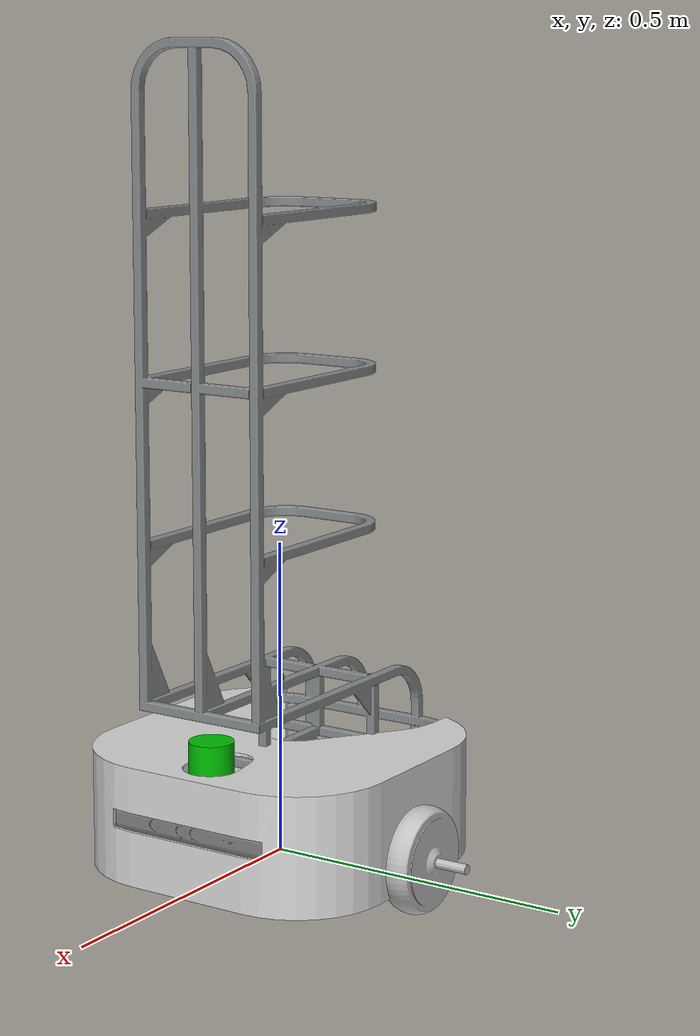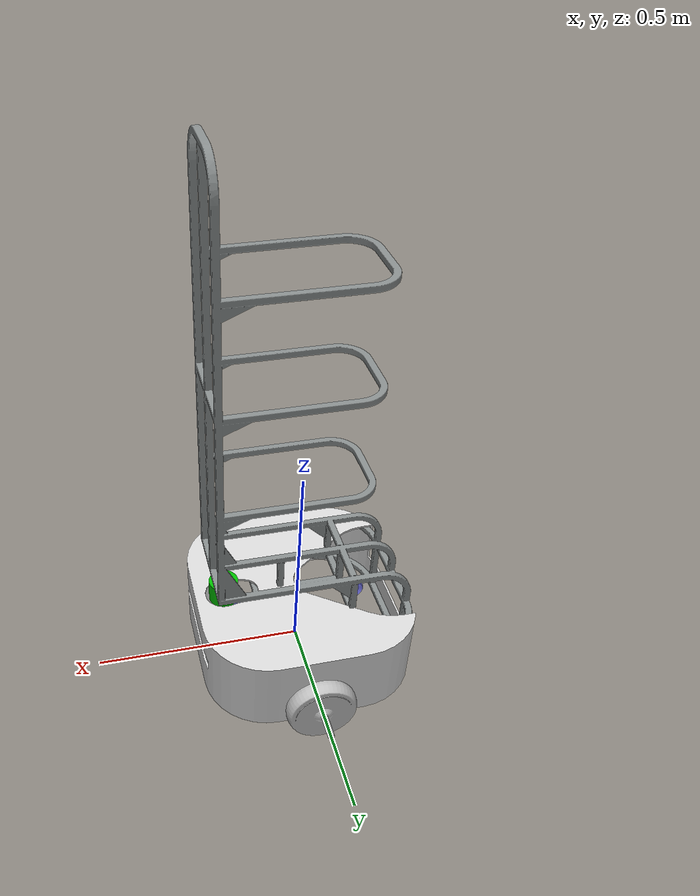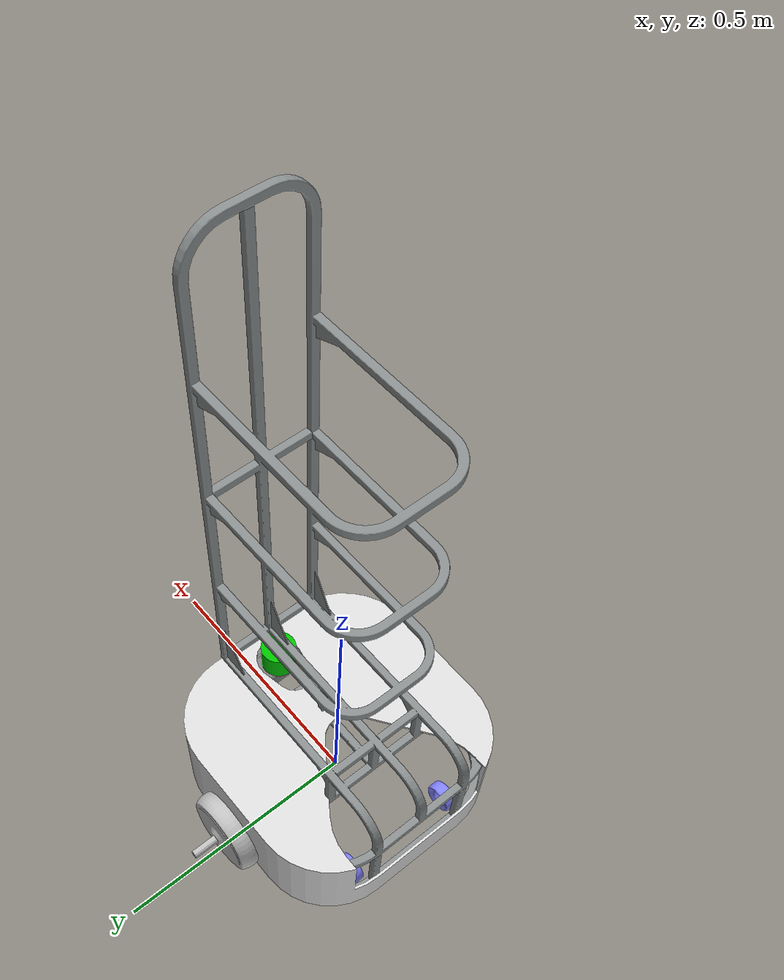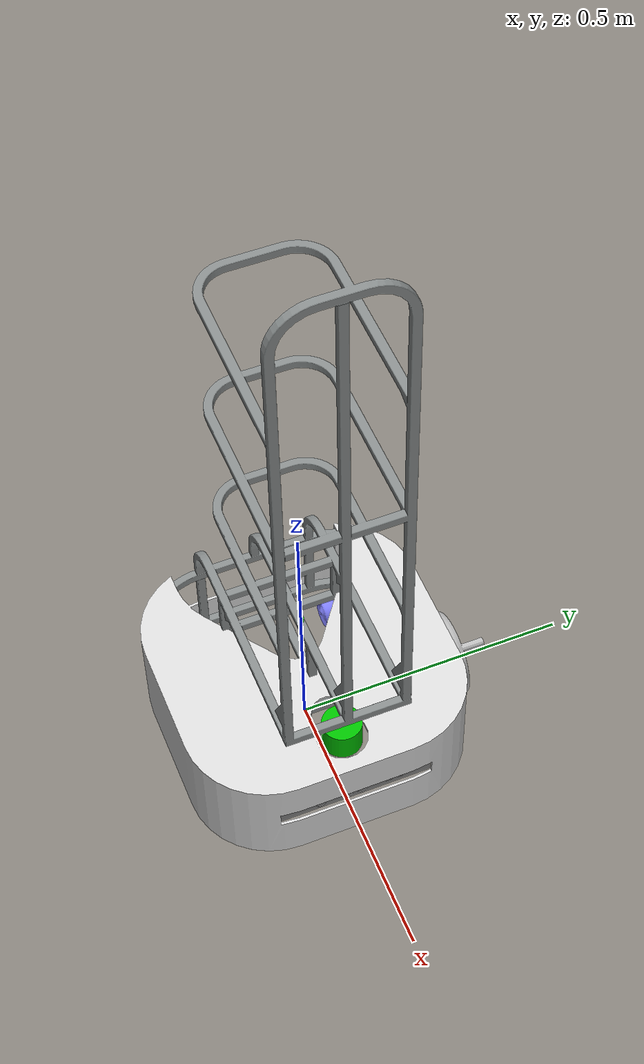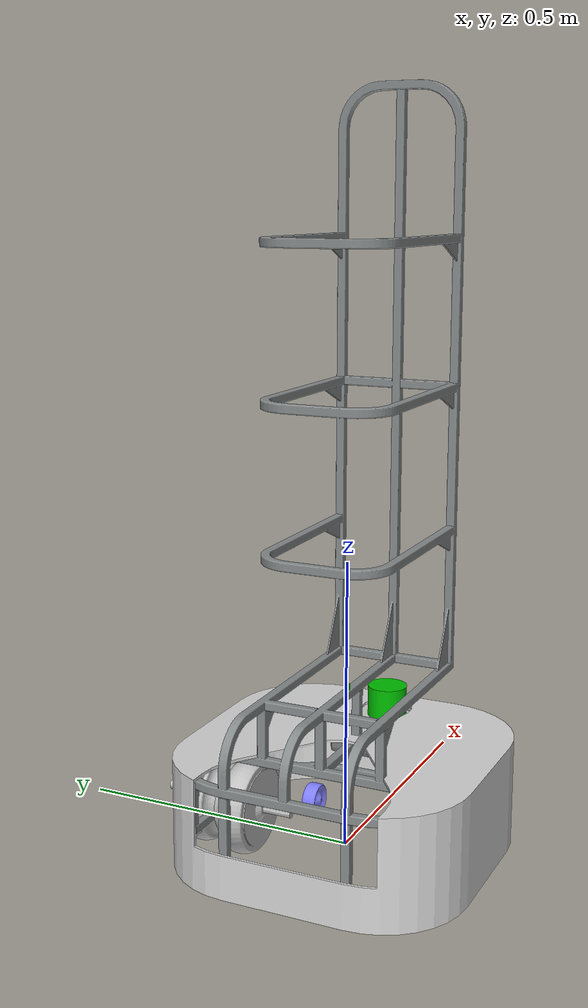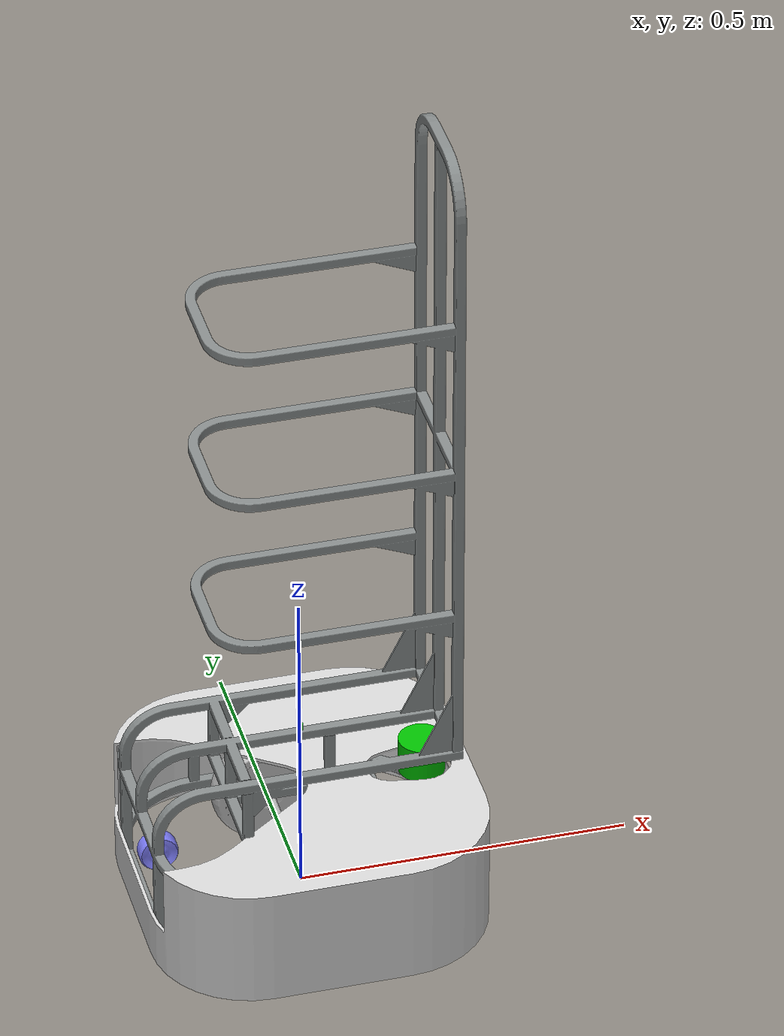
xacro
<?xml version="1.0" ?>
<robot name="waiteronix" xmlns:xacro="http://www.ros.org/wiki/xacro">

  <xacro:include filename="$(find waiteronix)/urdf/waiteronix.gazebo"/>
  <xacro:include filename="$(find waiteronix)/urdf/caster_wheels.xacro"/>
  <xacro:include filename="$(find waiteronix)/urdf/diff_wheels.xacro"/>
  <xacro:include filename="$(find waiteronix)/urdf/sensors.xacro"/>

  <link name="robot_footprint">
  </link>

  <link
    name="base_link">
    <inertial>
      <origin
        xyz="0.047332 6.6722E-08 0.43205"
        rpy="0 0 0" />
      <mass
        value="7.2595" />
      <inertia
        ixx="0.2352"
        ixy="-3.3315E-09"
        ixz="-0.0013775"
        iyy="0.23491"
        iyz="1.1095E-10"
        izz="0.18376" />
    </inertial>
    <visual>
      <origin
        xyz="0 0 0"
        rpy="0 0 0" />
      <geometry>
        <mesh
          filename="package://waiteronix/meshes/base_link.STL" />
      </geometry>
      <material
        name="">
        <color
          rgba="0.52941 0.54902 0.54902 1" />
      </material>
    </visual>
    <collision>
      <origin
        xyz="0 0 0"
        rpy="0 0 0" />
      <geometry>
        <mesh
          filename="package://waiteronix/meshes/base_link.STL" />
      </geometry>
    </collision>
  </link>

  <joint name="dummy_joint" type="fixed">
    <parent link="robot_footprint"/>
    <child link="base_link"/>
   </joint>

  <link
    name="Body">
    <inertial>
      <origin
        xyz="0.030377 8.5895E-16 0.11943"
        rpy="0 0 0" />
      <mass
        value="5.7583" />
      <inertia
        ixx="0.23029"
        ixy="-3.4648E-17"
        ixz="-0.0068726"
        iyy="0.17581"
        iyz="-2.2779E-17"
        izz="0.35786" />
    </inertial>
    <visual>
      <origin
        xyz="0 0 0"
        rpy="0 0 0" />
      <geometry>
        <mesh
          filename="package://waiteronix/meshes/Body.STL" />
      </geometry>
      <material
        name="">
        <color
          rgba="0.84706 0.84706 0.84706 1" />
      </material>
    </visual>
    <collision>
      <origin
        xyz="0 0 0"
        rpy="0 0 0" />
      <geometry>
        <mesh
          filename="package://waiteronix/meshes/Body.STL" />
      </geometry>
    </collision>
  </link>
  <joint
    name="Body_Joint"
    type="fixed">
    <origin
      xyz="0 0 0"
      rpy="0 0 0" />
    <parent
      link="base_link" />
    <child
      link="Body" />
    <axis
      xyz="0 0 0" />
  </joint>

</robot>

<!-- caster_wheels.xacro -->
<robot xmlns:xacro="http://www.ros.org/wiki/xacro">

  <link
    name="F_W_Front_Left">
    <inertial>
      <origin
        xyz="0.13868 0.123 0.005"
        rpy="0 0 0" />
      <mass
        value="0.059636" />
      <inertia
        ixx="1.6012E-05"
        ixy="-1.927E-20"
        ixz="-9.0002E-22"
        iyy="2.7287E-05"
        iyz="-2.1253E-20"
        izz="1.6012E-05" />
    </inertial>
    <visual>
      <origin
        xyz="0 0 0"
        rpy="0 0 0" />
      <geometry>
        <mesh
          filename="package://waiteronix/meshes/F_W_Front_Left.STL" />
      </geometry>
      <material
        name="">
        <color
          rgba="0.50196 0.50196 1 1" />
      </material>
    </visual>
    <collision>
      <origin
        xyz="0 0 0"
        rpy="0 0 0" />
      <geometry>
        <mesh
          filename="package://waiteronix/meshes/F_W_Front_Left.STL" />
      </geometry>
    </collision>
  </link>
  <joint
    name="F_W_Front_Left_Joint"
    type="fixed">
    <origin
      xyz="0 0 0"
      rpy="0 0 0" />
    <parent
      link="base_link" />
    <child
      link="F_W_Front_Left" />
    <axis
      xyz="0 1 0" />
  </joint>
  <link
    name="F_W_Front_Right">
    <inertial>
      <origin
        xyz="0.13868 -0.123 .005"
        rpy="0 0 0" />
      <mass
        value="0.059636" />
      <inertia
        ixx="1.6012E-05"
        ixy="5.4827E-21"
        ixz="-3.2336E-22"
        iyy="2.7287E-05"
        iyz="-3.8765E-20"
        izz="1.6012E-05" />
    </inertial>
    <visual>
      <origin
        xyz="0 0 0"
        rpy="0 0 0" />
      <geometry>
        <mesh
          filename="package://waiteronix/meshes/F_W_Front_Right.STL" />
      </geometry>
      <material
        name="">
        <color
          rgba="0.50196 0.50196 1 1" />
      </material>
    </visual>
    <collision>
      <origin
        xyz="0 0 0"
        rpy="0 0 0" />
      <geometry>
        <mesh
          filename="package://waiteronix/meshes/F_W_Front_Right.STL" />
      </geometry>
    </collision>
  </link>
  <joint
    name="F_W_Front_Right_Joint"
    type="fixed">
    <origin
      xyz="0 0 0"
      rpy="0 0 0" />
    <parent
      link="base_link" />
    <child
      link="F_W_Front_Right" />
    <axis
      xyz="0 1 0" />
  </joint>
  <link
    name="F_W_Back_Left">
    <inertial>
      <origin
        xyz="-0.19 0.1215 .005"
        rpy="0 0 0" />
      <mass
        value="0.059636" />
      <inertia
        ixx="1.6012E-05"
        ixy="2.3169E-21"
        ixz="-1.6362E-21"
        iyy="2.7287E-05"
        iyz="-4.46E-21"
        izz="1.6012E-05" />
    </inertial>
    <visual>
      <origin
        xyz="0 0 0"
        rpy="0 0 0" />
      <geometry>
        <mesh
          filename="package://waiteronix/meshes/F_W_Back_Left.STL" />
      </geometry>
      <material
        name="">
        <color
          rgba="0.50196 0.50196 1 1" />
      </material>
    </visual>
    <collision>
      <origin
        xyz="0 0 0"
        rpy="0 0 0" />
      <geometry>
        <mesh
          filename="package://waiteronix/meshes/F_W_Back_Left.STL" />
      </geometry>
    </collision>
  </link>
  <joint
    name="F_W_Back_Left_Joint"
    type="fixed">
    <origin
      xyz="0 0 0"
      rpy="0 0 0" />
    <parent
      link="base_link" />
    <child
      link="F_W_Back_Left" />
    <axis
      xyz="0 1 0" />
  </joint>
  <link
    name="F_W_Back_Right">
    <inertial>
      <origin
        xyz="-0.19 -0.1215 0.005"
        rpy="0 0 0" />
      <mass
        value="0.059636" />
      <inertia
        ixx="1.6012E-05"
        ixy="2.9984E-21"
        ixz="-1.6638E-21"
        iyy="2.7287E-05"
        iyz="-1.7395E-22"
        izz="1.6012E-05" />
    </inertial>
    <visual>
      <origin
        xyz="0 0 0"
        rpy="0 0 0" />
      <geometry>
        <mesh
          filename="package://waiteronix/meshes/F_W_Back_Right.STL" />
      </geometry>
      <material
        name="">
        <color
          rgba="0.50196 0.50196 1 1" />
      </material>
    </visual>
    <collision>
      <origin
        xyz="0 0 0"
        rpy="0 0 0" />
      <geometry>
        <mesh
          filename="package://waiteronix/meshes/F_W_Back_Right.STL" />
      </geometry>
    </collision>
  </link>
  <joint
    name="F_W_Back_Right_Joint"
    type="fixed">
    <origin
      xyz="0 0 0"
      rpy="0 0 0" />
    <parent
      link="base_link" />
    <child
      link="F_W_Back_Right" />
    <axis
      xyz="0 1 0" />
  </joint>
</robot>

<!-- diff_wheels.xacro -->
<robot xmlns:xacro="http://www.ros.org/wiki/xacro">
 <link
    name="Right_Wheel">
    <inertial>
      <origin
        xyz="2.5996E-07 0.037854 6.57E-06"
        rpy="0 0 0" />
      <mass
        value="1.21" />
      <inertia
        ixx="0.0022228"
        ixy="-1.8762E-08"
        ixz="1.5736E-09"
        iyy="0.0036326"
        iyz="-4.7418E-07"
        izz="0.0022228" />
    </inertial>
    <visual>
      <origin
        xyz="0 0 0"
        rpy="0 0 0" />
      <geometry>
        <mesh
          filename="package://waiteronix/meshes/Right_Wheel.STL" />
      </geometry>
      <material
        name="">
        <color
          rgba="0.75294 0.75294 0.75294 1" />
      </material>
    </visual>
    <collision>
      <origin
        xyz="0 0 0"
        rpy="0 0 0" />
      <geometry>
        <mesh
          filename="package://waiteronix/meshes/Right_Wheel.STL" />
      </geometry>
    </collision>
  </link>
  <joint
    name="Right_Wheel_Joint"
    type="continuous">
    <origin
      xyz="0.0087223 0.224 0.038"
      rpy="0 0 0" />
    <parent
      link="base_link" />
    <child
      link="Right_Wheel" />
    <axis
      xyz="0 1 0" />
    <limit
      effort="40"
      velocity="10" />
  </joint>
  <link
    name="Left_Wheel">
    <inertial>
      <origin
        xyz="-2.5996E-07 0.037854 6.57E-06"
        rpy="0 0 0" />
      <mass
        value="1.21" />
      <inertia
        ixx="0.0022228"
        ixy="1.8762E-08"
        ixz="1.5736E-09"
        iyy="0.0036326"
        iyz="4.7418E-07"
        izz="0.0022228" />
    </inertial>
    <visual>
      <origin
        xyz="0 0 0"
        rpy="0 0 0" />
      <geometry>
        <mesh
          filename="package://waiteronix/meshes/Left_Wheel.STL" />
      </geometry>
      <material
        name="">
        <color
          rgba="0.75294 0.75294 0.75294 1" />
      </material>
    </visual>
    <collision>
      <origin
        xyz="0 0 0"
        rpy="0 0 0" />
      <geometry>
        <mesh
          filename="package://waiteronix/meshes/Left_Wheel.STL" />
      </geometry>
    </collision>
  </link>
  <joint
    name="Left_Wheel_Joint"
    type="continuous">
    <origin
      xyz="-0.0087223 0.224 0.038"
      rpy="0 0 0" />
    <parent
      link="base_link" />
    <child
      link="Left_Wheel" />
    <axis
      xyz="0 1 0" />
    <limit
      effort="40"
      velocity="10" />
  </joint>
</robot>

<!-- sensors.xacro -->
<robot xmlns:xacro="http://www.ros.org/wiki/xacro">

 <link
    name="Camera">
    <inertial>
      <origin
        xyz="-0.027769 0.064365 -0.00028163"
        rpy="0 0 0" />
      <mass
        value="0.55893" />
      <inertia
        ixx="0.0029329"
        ixy="-9.3578E-07"
        ixz="8.9611E-08"
        iyy="0.00023177"
        iyz="-9.4508E-09"
        izz="0.0030272" />
    </inertial>
    <visual>
      <origin
        xyz="0 0 0"
        rpy="0 0 0" />
      <geometry>
        <mesh
          filename="package://waiteronix/meshes/Camera.STL" />
      </geometry>
      <material
        name="">
        <color
          rgba="0.49412 0.49412 0.49412 1" />
      </material>
    </visual>
    <collision>
      <origin
        xyz="0 0 0"
        rpy="0 0 0" />
      <geometry>
        <mesh
          filename="package://waiteronix/meshes/Camera.STL" />
      </geometry>
    </collision>
  </link>
  <joint
    name="Camera_Joint"
    type="fixed">
    <origin
      xyz="0.24478 -0.064307 0.0965"
      rpy="0 0 0" />
    <parent
      link="base_link" />
    <child
      link="Camera" />
    <axis
      xyz="1 0 0" />
  </joint>

  <link
    name="Lidar">
    <inertial>
      <origin
        xyz="8.3267E-17 -1.9976E-15 -0.013917"
        rpy="0 0 0" />
      <mass
        value="0.12331" />
      <inertia
        ixx="8.5672E-05"
        ixy="-3.3087E-22"
        ixz="-3.3193E-19"
        iyy="8.5672E-05"
        iyz="-1.4388E-23"
        izz="0.00010203" />
    </inertial>
    <visual>
      <origin
        xyz="0 0 0"
        rpy="0 0 0" />
      <geometry>
        <mesh
          filename="package://waiteronix/meshes/Lidar.STL" />
      </geometry>
      <material
        name="">
        <color
          rgba="0 0.75294 0 1" />
      </material>
    </visual>
    <collision>
      <origin
        xyz="0 0 0"
        rpy="0 0 0" />
      <geometry>
        <mesh
          filename="package://waiteronix/meshes/Lidar.STL" />
      </geometry>
    </collision>
  </link>
  <joint
    name="Lidar_Joint"
    type="fixed">
    <origin
      xyz="0.185 0 0.21663"
      rpy="0 0 0" />
    <parent
      link="base_link" />
    <child
      link="Lidar" />
    <axis
      xyz="0 0 1" />
  </joint>

  <link
    name="IMU">
    <inertial>
      <origin
        xyz="-1.8518E-16 -6.2326E-15 -0.005"
        rpy="0 0 0" />
      <mass
        value="0.0007854" />
      <inertia
        ixx="1.1454E-08"
        ixy="1.831E-25"
        ixz="-3.3736E-23"
        iyy="1.1454E-08"
        iyz="1.7323E-23"
        izz="9.8175E-09" />
    </inertial>
    <visual>
      <origin
        xyz="0 0 0"
        rpy="0 0 0" />
      <geometry>
        <mesh
          filename="package://waiteronix/meshes/IMU.STL" />
      </geometry>
      <material
        name="">
        <color
          rgba="0 0.75294 0 1" />
      </material>
    </visual>
    <collision>
      <origin
        xyz="0 0 0"
        rpy="0 0 0" />
      <geometry>
        <mesh
          filename="package://waiteronix/meshes/IMU.STL" />
      </geometry>
    </collision>
  </link>
  <joint
    name="IMU_Joint"
    type="fixed">
    <origin
      xyz="0 0 0.289"
      rpy="0 0 0" />
    <parent
      link="base_link" />
    <child
      link="IMU" />
    <axis
      xyz="0 0 1" />
  </joint>
</robot>
